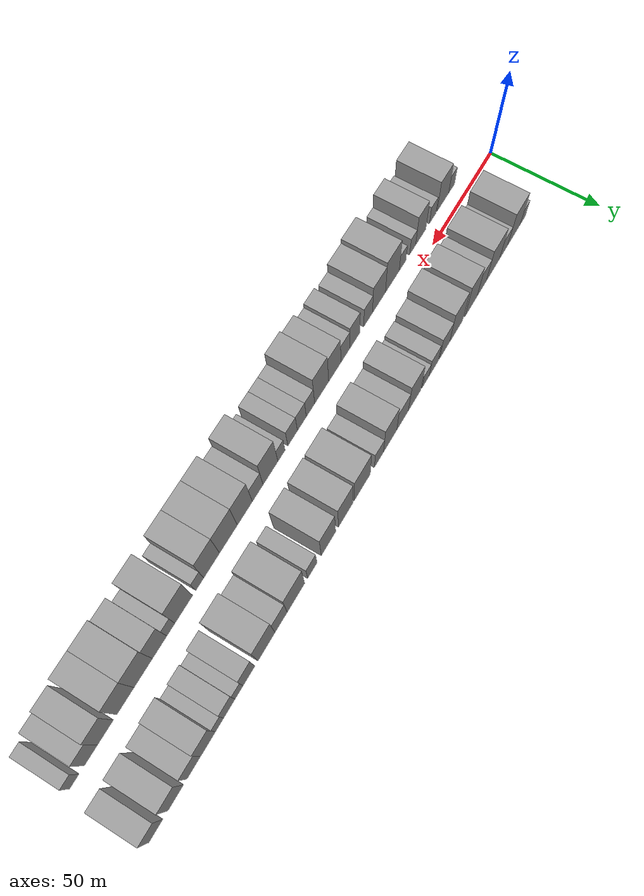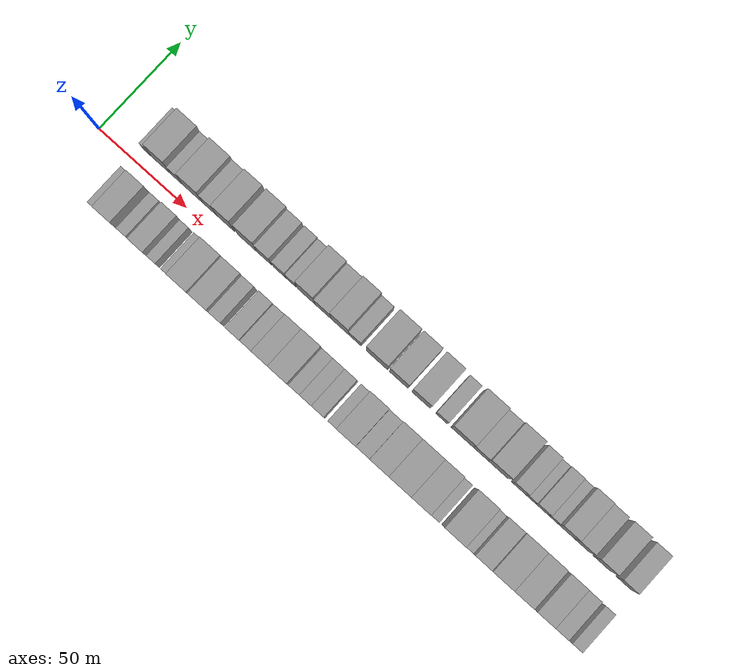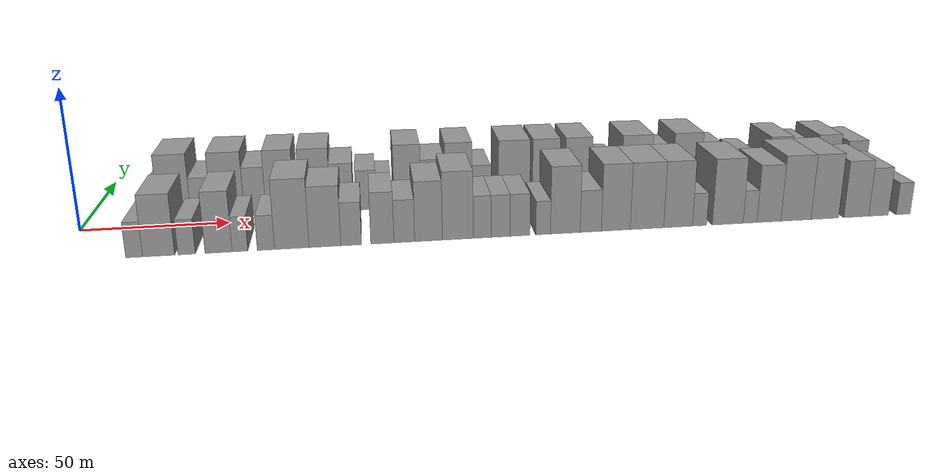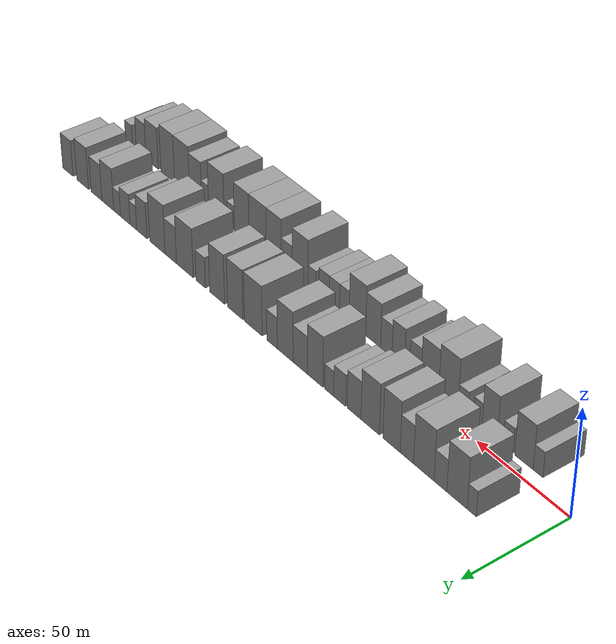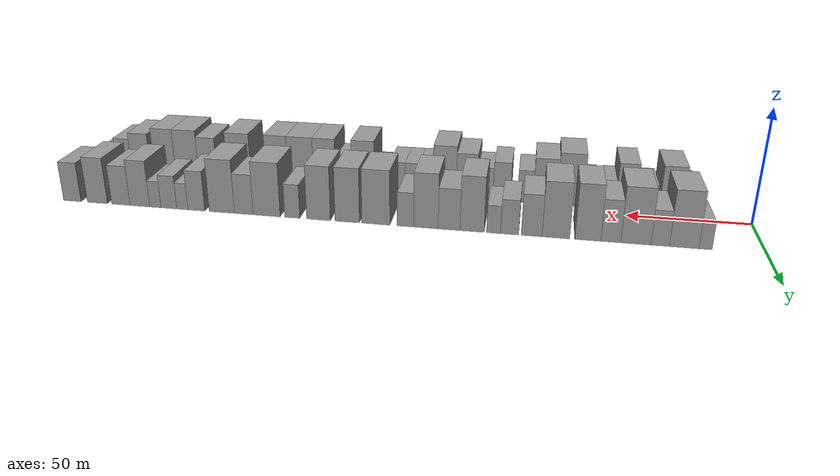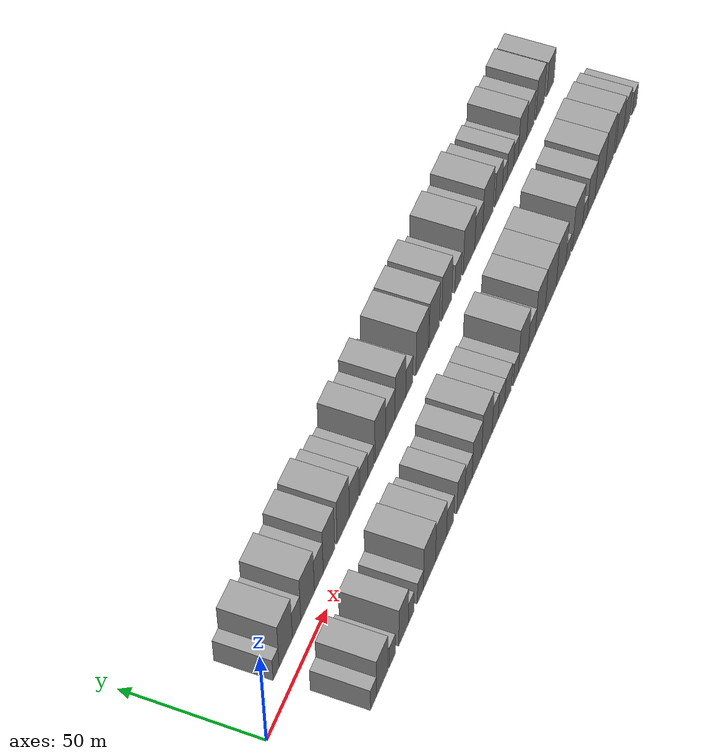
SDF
<sdf version="1.6">
 <world name="default">
  <scene>
   <sky><clouds><speed>12</speed></clouds></sky>
   <ambient>0.4 0.4 0.4 1</ambient>
   <background>0.7 0.7 0.7 1</background>
   <shadows>1</shadows>
  </scene>
  <gravity>0 0 -9.8066</gravity>
  <magnetic_field>6e-06 2.3e-05 -4.2e-05</magnetic_field>
  <physics default="0" name="default_physics" type="ode">
   <ode>
    <solver>
     <type>quick</type>
     <iters>10</iters>
     <sor>1.0</sor>
     <use_dynamic_moi_rescaling>0</use_dynamic_moi_rescaling>
    </solver>
    <constraints>
     <cfm>0</cfm>
     <erp>0.2</erp>
     <contact_max_correcting_vel>100</contact_max_correcting_vel>
     <contact_surface_layer>0.001</contact_surface_layer>
    </constraints>
   </ode>
   <max_step_size>0.004</max_step_size>
   <real_time_factor>1</real_time_factor>
   <real_time_update_rate>250</real_time_update_rate>
  </physics>
  <light name="sun" type="directional">
   <pose>0 0 10 0 0 0</pose>
   <diffuse>0.8 0.8 0.8 1</diffuse>
   <specular>0.2 0.2 0.2 1</specular>
   <attenuation>
    <range>1000</range>
    <constant>0.9</constant>
    <linear>0.01</linear>
    <quadratic>0.001</quadratic>
   </attenuation>
   <direction>-0.5 0.1 -0.9</direction>
  </light>
  <model name="building_1">
   <static>1</static>
   <pose>22.4386 16.0000 0 0.000000 0.000000 1.570796</pose>
   <link name="link">
    <pose>0 0 6.00 0 0 0</pose>
    <collision name="collision"><geometry><box><size>20.0000 4.8771 12.0000</size></box></geometry></collision>
    <visual name="visual">
     <cast_shadows>0</cast_shadows>
     <geometry><box><size>20.0000 4.8771 12.0000</size></box></geometry>
     <material>
      <script>
       <uri>model://grey_wall/materials/scripts</uri>
       <uri>model://grey_wall/materials/textures</uri>
       <name>vrc/grey_wall</name>
      </script>
     </material>
    </visual>
   </link>
  </model>
  <model name="building_2">
   <static>1</static>
   <pose>30.3815 16.0000 0 0.000000 0.000000 1.570796</pose>
   <link name="link">
    <pose>0 0 12.00 0 0 0</pose>
    <collision name="collision"><geometry><box><size>20.0000 11.0089 24.0000</size></box></geometry></collision>
    <visual name="visual">
     <cast_shadows>0</cast_shadows>
     <geometry><box><size>20.0000 11.0089 24.0000</size></box></geometry>
     <material>
      <script>
       <uri>model://grey_wall/materials/scripts</uri>
       <uri>model://grey_wall/materials/textures</uri>
       <name>vrc/grey_wall</name>
      </script>
     </material>
    </visual>
   </link>
  </model>
  <model name="building_3">
   <static>1</static>
   <pose>39.3526 16.0000 0 0.000000 0.000000 1.570796</pose>
   <link name="link">
    <pose>0 0 7.50 0 0 0</pose>
    <collision name="collision"><geometry><box><size>20.0000 6.9334 15.0000</size></box></geometry></collision>
    <visual name="visual">
     <cast_shadows>0</cast_shadows>
     <geometry><box><size>20.0000 6.9334 15.0000</size></box></geometry>
     <material>
      <script>
       <uri>model://grey_wall/materials/scripts</uri>
       <uri>model://grey_wall/materials/textures</uri>
       <name>vrc/grey_wall</name>
      </script>
     </material>
    </visual>
   </link>
  </model>
  <model name="building_4">
   <static>1</static>
   <pose>48.5223 16.0000 0 0.000000 0.000000 1.570796</pose>
   <link name="link">
    <pose>0 0 12.00 0 0 0</pose>
    <collision name="collision"><geometry><box><size>20.0000 11.4059 24.0000</size></box></geometry></collision>
    <visual name="visual">
     <cast_shadows>0</cast_shadows>
     <geometry><box><size>20.0000 11.4059 24.0000</size></box></geometry>
     <material>
      <script>
       <uri>model://grey_wall/materials/scripts</uri>
       <uri>model://grey_wall/materials/textures</uri>
       <name>vrc/grey_wall</name>
      </script>
     </material>
    </visual>
   </link>
  </model>
  <model name="building_5">
   <static>1</static>
   <pose>58.0222 16.0000 0 0.000000 0.000000 1.570796</pose>
   <link name="link">
    <pose>0 0 9.00 0 0 0</pose>
    <collision name="collision"><geometry><box><size>20.0000 7.5941 18.0000</size></box></geometry></collision>
    <visual name="visual">
     <cast_shadows>0</cast_shadows>
     <geometry><box><size>20.0000 7.5941 18.0000</size></box></geometry>
     <material>
      <script>
       <uri>model://grey_wall/materials/scripts</uri>
       <uri>model://grey_wall/materials/textures</uri>
       <name>vrc/grey_wall</name>
      </script>
     </material>
    </visual>
   </link>
  </model>
  <model name="building_6">
   <static>1</static>
   <pose>66.7886 16.0000 0 0.000000 0.000000 1.570796</pose>
   <link name="link">
    <pose>0 0 12.00 0 0 0</pose>
    <collision name="collision"><geometry><box><size>20.0000 9.9386 24.0000</size></box></geometry></collision>
    <visual name="visual">
     <cast_shadows>0</cast_shadows>
     <geometry><box><size>20.0000 9.9386 24.0000</size></box></geometry>
     <material>
      <script>
       <uri>model://grey_wall/materials/scripts</uri>
       <uri>model://grey_wall/materials/textures</uri>
       <name>vrc/grey_wall</name>
      </script>
     </material>
    </visual>
   </link>
  </model>
  <model name="building_7">
   <static>1</static>
   <pose>79.1548 16.0000 0 0.000000 0.000000 1.570796</pose>
   <link name="link">
    <pose>0 0 12.00 0 0 0</pose>
    <collision name="collision"><geometry><box><size>20.0000 10.7938 24.0000</size></box></geometry></collision>
    <visual name="visual">
     <cast_shadows>0</cast_shadows>
     <geometry><box><size>20.0000 10.7938 24.0000</size></box></geometry>
     <material>
      <script>
       <uri>model://grey_wall/materials/scripts</uri>
       <uri>model://grey_wall/materials/textures</uri>
       <name>vrc/grey_wall</name>
      </script>
     </material>
    </visual>
   </link>
  </model>
  <model name="building_8">
   <static>1</static>
   <pose>88.6524 16.0000 0 0.000000 0.000000 1.570796</pose>
   <link name="link">
    <pose>0 0 9.00 0 0 0</pose>
    <collision name="collision"><geometry><box><size>20.0000 8.2014 18.0000</size></box></geometry></collision>
    <visual name="visual">
     <cast_shadows>0</cast_shadows>
     <geometry><box><size>20.0000 8.2014 18.0000</size></box></geometry>
     <material>
      <script>
       <uri>model://grey_wall/materials/scripts</uri>
       <uri>model://grey_wall/materials/textures</uri>
       <name>vrc/grey_wall</name>
      </script>
     </material>
    </visual>
   </link>
  </model>
  <model name="building_9">
   <static>1</static>
   <pose>97.3498 16.0000 0 0.000000 0.000000 1.570796</pose>
   <link name="link">
    <pose>0 0 7.50 0 0 0</pose>
    <collision name="collision"><geometry><box><size>20.0000 7.1934 15.0000</size></box></geometry></collision>
    <visual name="visual">
     <cast_shadows>0</cast_shadows>
     <geometry><box><size>20.0000 7.1934 15.0000</size></box></geometry>
     <material>
      <script>
       <uri>model://grey_wall/materials/scripts</uri>
       <uri>model://grey_wall/materials/textures</uri>
       <name>vrc/grey_wall</name>
      </script>
     </material>
    </visual>
   </link>
  </model>
  <model name="building_10">
   <static>1</static>
   <pose>103.7270 16.0000 0 0.000000 0.000000 1.570796</pose>
   <link name="link">
    <pose>0 0 6.00 0 0 0</pose>
    <collision name="collision"><geometry><box><size>20.0000 5.5611 12.0000</size></box></geometry></collision>
    <visual name="visual">
     <cast_shadows>0</cast_shadows>
     <geometry><box><size>20.0000 5.5611 12.0000</size></box></geometry>
     <material>
      <script>
       <uri>model://grey_wall/materials/scripts</uri>
       <uri>model://grey_wall/materials/textures</uri>
       <name>vrc/grey_wall</name>
      </script>
     </material>
    </visual>
   </link>
  </model>
  <model name="building_11">
   <static>1</static>
   <pose>112.3745 16.0000 0 0.000000 0.000000 1.570796</pose>
   <link name="link">
    <pose>0 0 12.00 0 0 0</pose>
    <collision name="collision"><geometry><box><size>20.0000 9.7338 24.0000</size></box></geometry></collision>
    <visual name="visual">
     <cast_shadows>0</cast_shadows>
     <geometry><box><size>20.0000 9.7338 24.0000</size></box></geometry>
     <material>
      <script>
       <uri>model://grey_wall/materials/scripts</uri>
       <uri>model://grey_wall/materials/textures</uri>
       <name>vrc/grey_wall</name>
      </script>
     </material>
    </visual>
   </link>
  </model>
  <model name="building_12">
   <static>1</static>
   <pose>121.6803 16.0000 0 0.000000 0.000000 1.570796</pose>
   <link name="link">
    <pose>0 0 9.00 0 0 0</pose>
    <collision name="collision"><geometry><box><size>20.0000 8.8777 18.0000</size></box></geometry></collision>
    <visual name="visual">
     <cast_shadows>0</cast_shadows>
     <geometry><box><size>20.0000 8.8777 18.0000</size></box></geometry>
     <material>
      <script>
       <uri>model://grey_wall/materials/scripts</uri>
       <uri>model://grey_wall/materials/textures</uri>
       <name>vrc/grey_wall</name>
      </script>
     </material>
    </visual>
   </link>
  </model>
  <model name="building_13">
   <static>1</static>
   <pose>131.1339 16.0000 0 0.000000 0.000000 1.570796</pose>
   <link name="link">
    <pose>0 0 12.00 0 0 0</pose>
    <collision name="collision"><geometry><box><size>20.0000 10.0296 24.0000</size></box></geometry></collision>
    <visual name="visual">
     <cast_shadows>0</cast_shadows>
     <geometry><box><size>20.0000 10.0296 24.0000</size></box></geometry>
     <material>
      <script>
       <uri>model://grey_wall/materials/scripts</uri>
       <uri>model://grey_wall/materials/textures</uri>
       <name>vrc/grey_wall</name>
      </script>
     </material>
    </visual>
   </link>
  </model>
  <model name="building_14">
   <static>1</static>
   <pose>139.5360 16.0000 0 0.000000 0.000000 1.570796</pose>
   <link name="link">
    <pose>0 0 7.50 0 0 0</pose>
    <collision name="collision"><geometry><box><size>20.0000 6.7747 15.0000</size></box></geometry></collision>
    <visual name="visual">
     <cast_shadows>0</cast_shadows>
     <geometry><box><size>20.0000 6.7747 15.0000</size></box></geometry>
     <material>
      <script>
       <uri>model://grey_wall/materials/scripts</uri>
       <uri>model://grey_wall/materials/textures</uri>
       <name>vrc/grey_wall</name>
      </script>
     </material>
    </visual>
   </link>
  </model>
  <model name="building_15">
   <static>1</static>
   <pose>151.7849 16.0000 0 0.000000 0.000000 1.570796</pose>
   <link name="link">
    <pose>0 0 12.00 0 0 0</pose>
    <collision name="collision"><geometry><box><size>20.0000 11.7231 24.0000</size></box></geometry></collision>
    <visual name="visual">
     <cast_shadows>0</cast_shadows>
     <geometry><box><size>20.0000 11.7231 24.0000</size></box></geometry>
     <material>
      <script>
       <uri>model://grey_wall/materials/scripts</uri>
       <uri>model://grey_wall/materials/textures</uri>
       <name>vrc/grey_wall</name>
      </script>
     </material>
    </visual>
   </link>
  </model>
  <model name="building_16">
   <static>1</static>
   <pose>163.8093 16.0000 0 0.000000 0.000000 1.570796</pose>
   <link name="link">
    <pose>0 0 12.00 0 0 0</pose>
    <collision name="collision"><geometry><box><size>20.0000 10.3256 24.0000</size></box></geometry></collision>
    <visual name="visual">
     <cast_shadows>0</cast_shadows>
     <geometry><box><size>20.0000 10.3256 24.0000</size></box></geometry>
     <material>
      <script>
       <uri>model://grey_wall/materials/scripts</uri>
       <uri>model://grey_wall/materials/textures</uri>
       <name>vrc/grey_wall</name>
      </script>
     </material>
    </visual>
   </link>
  </model>
  <model name="building_17">
   <static>1</static>
   <pose>176.0331 16.0000 0 0.000000 0.000000 1.570796</pose>
   <link name="link">
    <pose>0 0 12.00 0 0 0</pose>
    <collision name="collision"><geometry><box><size>20.0000 10.1220 24.0000</size></box></geometry></collision>
    <visual name="visual">
     <cast_shadows>0</cast_shadows>
     <geometry><box><size>20.0000 10.1220 24.0000</size></box></geometry>
     <material>
      <script>
       <uri>model://grey_wall/materials/scripts</uri>
       <uri>model://grey_wall/materials/textures</uri>
       <name>vrc/grey_wall</name>
      </script>
     </material>
    </visual>
   </link>
  </model>
  <model name="building_18">
   <static>1</static>
   <pose>187.3365 16.0000 0 0.000000 0.000000 1.570796</pose>
   <link name="link">
    <pose>0 0 7.50 0 0 0</pose>
    <collision name="collision"><geometry><box><size>20.0000 6.4848 15.0000</size></box></geometry></collision>
    <visual name="visual">
     <cast_shadows>0</cast_shadows>
     <geometry><box><size>20.0000 6.4848 15.0000</size></box></geometry>
     <material>
      <script>
       <uri>model://grey_wall/materials/scripts</uri>
       <uri>model://grey_wall/materials/textures</uri>
       <name>vrc/grey_wall</name>
      </script>
     </material>
    </visual>
   </link>
  </model>
  <model name="building_19">
   <static>1</static>
   <pose>198.4865 16.0000 0 0.000000 0.000000 1.570796</pose>
   <link name="link">
    <pose>0 0 12.00 0 0 0</pose>
    <collision name="collision"><geometry><box><size>20.0000 11.8150 24.0000</size></box></geometry></collision>
    <visual name="visual">
     <cast_shadows>0</cast_shadows>
     <geometry><box><size>20.0000 11.8150 24.0000</size></box></geometry>
     <material>
      <script>
       <uri>model://grey_wall/materials/scripts</uri>
       <uri>model://grey_wall/materials/textures</uri>
       <name>vrc/grey_wall</name>
      </script>
     </material>
    </visual>
   </link>
  </model>
  <model name="building_20">
   <static>1</static>
   <pose>208.4849 16.0000 0 0.000000 0.000000 1.570796</pose>
   <link name="link">
    <pose>0 0 9.00 0 0 0</pose>
    <collision name="collision"><geometry><box><size>20.0000 8.1819 18.0000</size></box></geometry></collision>
    <visual name="visual">
     <cast_shadows>0</cast_shadows>
     <geometry><box><size>20.0000 8.1819 18.0000</size></box></geometry>
     <material>
      <script>
       <uri>model://grey_wall/materials/scripts</uri>
       <uri>model://grey_wall/materials/textures</uri>
       <name>vrc/grey_wall</name>
      </script>
     </material>
    </visual>
   </link>
  </model>
  <model name="building_21">
   <static>1</static>
   <pose>218.1784 16.0000 0 0.000000 0.000000 1.570796</pose>
   <link name="link">
    <pose>0 0 12.00 0 0 0</pose>
    <collision name="collision"><geometry><box><size>20.0000 11.2052 24.0000</size></box></geometry></collision>
    <visual name="visual">
     <cast_shadows>0</cast_shadows>
     <geometry><box><size>20.0000 11.2052 24.0000</size></box></geometry>
     <material>
      <script>
       <uri>model://grey_wall/materials/scripts</uri>
       <uri>model://grey_wall/materials/textures</uri>
       <name>vrc/grey_wall</name>
      </script>
     </material>
    </visual>
   </link>
  </model>
  <model name="building_22">
   <static>1</static>
   <pose>229.5810 16.0000 0 0.000000 0.000000 1.570796</pose>
   <link name="link">
    <pose>0 0 9.00 0 0 0</pose>
    <collision name="collision"><geometry><box><size>20.0000 7.5998 18.0000</size></box></geometry></collision>
    <visual name="visual">
     <cast_shadows>0</cast_shadows>
     <geometry><box><size>20.0000 7.5998 18.0000</size></box></geometry>
     <material>
      <script>
       <uri>model://grey_wall/materials/scripts</uri>
       <uri>model://grey_wall/materials/textures</uri>
       <name>vrc/grey_wall</name>
      </script>
     </material>
    </visual>
   </link>
  </model>
  <model name="building_23">
   <static>1</static>
   <pose>235.9039 16.0000 0 0.000000 0.000000 1.570796</pose>
   <link name="link">
    <pose>0 0 6.00 0 0 0</pose>
    <collision name="collision"><geometry><box><size>20.0000 5.0461 12.0000</size></box></geometry></collision>
    <visual name="visual">
     <cast_shadows>0</cast_shadows>
     <geometry><box><size>20.0000 5.0461 12.0000</size></box></geometry>
     <material>
      <script>
       <uri>model://grey_wall/materials/scripts</uri>
       <uri>model://grey_wall/materials/textures</uri>
       <name>vrc/grey_wall</name>
      </script>
     </material>
    </visual>
   </link>
  </model>
  <model name="building_24">
   <static>1</static>
   <pose>242.0188 16.0000 0 0.000000 0.000000 1.570796</pose>
   <link name="link">
    <pose>0 0 7.50 0 0 0</pose>
    <collision name="collision"><geometry><box><size>20.0000 7.1837 15.0000</size></box></geometry></collision>
    <visual name="visual">
     <cast_shadows>0</cast_shadows>
     <geometry><box><size>20.0000 7.1837 15.0000</size></box></geometry>
     <material>
      <script>
       <uri>model://grey_wall/materials/scripts</uri>
       <uri>model://grey_wall/materials/textures</uri>
       <name>vrc/grey_wall</name>
      </script>
     </material>
    </visual>
   </link>
  </model>
  <model name="building_25">
   <static>1</static>
   <pose>248.1818 16.0000 0 0.000000 0.000000 1.570796</pose>
   <link name="link">
    <pose>0 0 6.00 0 0 0</pose>
    <collision name="collision"><geometry><box><size>20.0000 5.1423 12.0000</size></box></geometry></collision>
    <visual name="visual">
     <cast_shadows>0</cast_shadows>
     <geometry><box><size>20.0000 5.1423 12.0000</size></box></geometry>
     <material>
      <script>
       <uri>model://grey_wall/materials/scripts</uri>
       <uri>model://grey_wall/materials/textures</uri>
       <name>vrc/grey_wall</name>
      </script>
     </material>
    </visual>
   </link>
  </model>
  <model name="building_26">
   <static>1</static>
   <pose>255.2734 16.0000 0 0.000000 0.000000 1.570796</pose>
   <link name="link">
    <pose>0 0 10.50 0 0 0</pose>
    <collision name="collision"><geometry><box><size>20.0000 9.0409 21.0000</size></box></geometry></collision>
    <visual name="visual">
     <cast_shadows>0</cast_shadows>
     <geometry><box><size>20.0000 9.0409 21.0000</size></box></geometry>
     <material>
      <script>
       <uri>model://grey_wall/materials/scripts</uri>
       <uri>model://grey_wall/materials/textures</uri>
       <name>vrc/grey_wall</name>
      </script>
     </material>
    </visual>
   </link>
  </model>
  <model name="building_27">
   <static>1</static>
   <pose>264.0254 16.0000 0 0.000000 0.000000 1.570796</pose>
   <link name="link">
    <pose>0 0 9.00 0 0 0</pose>
    <collision name="collision"><geometry><box><size>20.0000 8.4632 18.0000</size></box></geometry></collision>
    <visual name="visual">
     <cast_shadows>0</cast_shadows>
     <geometry><box><size>20.0000 8.4632 18.0000</size></box></geometry>
     <material>
      <script>
       <uri>model://grey_wall/materials/scripts</uri>
       <uri>model://grey_wall/materials/textures</uri>
       <name>vrc/grey_wall</name>
      </script>
     </material>
    </visual>
   </link>
  </model>
  <model name="building_28">
   <static>1</static>
   <pose>274.9208 16.0000 0 0.000000 0.000000 1.570796</pose>
   <link name="link">
    <pose>0 0 10.50 0 0 0</pose>
    <collision name="collision"><geometry><box><size>20.0000 9.3276 21.0000</size></box></geometry></collision>
    <visual name="visual">
     <cast_shadows>0</cast_shadows>
     <geometry><box><size>20.0000 9.3276 21.0000</size></box></geometry>
     <material>
      <script>
       <uri>model://grey_wall/materials/scripts</uri>
       <uri>model://grey_wall/materials/textures</uri>
       <name>vrc/grey_wall</name>
      </script>
     </material>
    </visual>
   </link>
  </model>
  <model name="building_29">
   <static>1</static>
   <pose>286.6977 16.0000 0 0.000000 0.000000 1.570796</pose>
   <link name="link">
    <pose>0 0 9.00 0 0 0</pose>
    <collision name="collision"><geometry><box><size>20.0000 8.2263 18.0000</size></box></geometry></collision>
    <visual name="visual">
     <cast_shadows>0</cast_shadows>
     <geometry><box><size>20.0000 8.2263 18.0000</size></box></geometry>
     <material>
      <script>
       <uri>model://grey_wall/materials/scripts</uri>
       <uri>model://grey_wall/materials/textures</uri>
       <name>vrc/grey_wall</name>
      </script>
     </material>
    </visual>
   </link>
  </model>
  <model name="building_30">
   <static>1</static>
   <pose>23.5822 -16.0000 0 0.000000 0.000000 1.570796</pose>
   <link name="link">
    <pose>0 0 6.00 0 0 0</pose>
    <collision name="collision"><geometry><box><size>20.0000 5.1645 12.0000</size></box></geometry></collision>
    <visual name="visual">
     <cast_shadows>0</cast_shadows>
     <geometry><box><size>20.0000 5.1645 12.0000</size></box></geometry>
     <material>
      <script>
       <uri>model://grey_wall/materials/scripts</uri>
       <uri>model://grey_wall/materials/textures</uri>
       <name>vrc/grey_wall</name>
      </script>
     </material>
    </visual>
   </link>
  </model>
  <model name="building_31">
   <static>1</static>
   <pose>31.1117 -16.0000 0 0.000000 0.000000 1.570796</pose>
   <link name="link">
    <pose>0 0 10.50 0 0 0</pose>
    <collision name="collision"><geometry><box><size>20.0000 9.8944 21.0000</size></box></geometry></collision>
    <visual name="visual">
     <cast_shadows>0</cast_shadows>
     <geometry><box><size>20.0000 9.8944 21.0000</size></box></geometry>
     <material>
      <script>
       <uri>model://grey_wall/materials/scripts</uri>
       <uri>model://grey_wall/materials/textures</uri>
       <name>vrc/grey_wall</name>
      </script>
     </material>
    </visual>
   </link>
  </model>
  <model name="building_32">
   <static>1</static>
   <pose>39.7659 -16.0000 0 0.000000 0.000000 1.570796</pose>
   <link name="link">
    <pose>0 0 6.00 0 0 0</pose>
    <collision name="collision"><geometry><box><size>20.0000 5.4142 12.0000</size></box></geometry></collision>
    <visual name="visual">
     <cast_shadows>0</cast_shadows>
     <geometry><box><size>20.0000 5.4142 12.0000</size></box></geometry>
     <material>
      <script>
       <uri>model://grey_wall/materials/scripts</uri>
       <uri>model://grey_wall/materials/textures</uri>
       <name>vrc/grey_wall</name>
      </script>
     </material>
    </visual>
   </link>
  </model>
  <model name="building_33">
   <static>1</static>
   <pose>49.7314 -16.0000 0 0.000000 0.000000 1.570796</pose>
   <link name="link">
    <pose>0 0 10.50 0 0 0</pose>
    <collision name="collision"><geometry><box><size>20.0000 8.5168 21.0000</size></box></geometry></collision>
    <visual name="visual">
     <cast_shadows>0</cast_shadows>
     <geometry><box><size>20.0000 8.5168 21.0000</size></box></geometry>
     <material>
      <script>
       <uri>model://grey_wall/materials/scripts</uri>
       <uri>model://grey_wall/materials/textures</uri>
       <name>vrc/grey_wall</name>
      </script>
     </material>
    </visual>
   </link>
  </model>
  <model name="building_34">
   <static>1</static>
   <pose>56.4510 -16.0000 0 0.000000 0.000000 1.570796</pose>
   <link name="link">
    <pose>0 0 6.00 0 0 0</pose>
    <collision name="collision"><geometry><box><size>20.0000 4.9223 12.0000</size></box></geometry></collision>
    <visual name="visual">
     <cast_shadows>0</cast_shadows>
     <geometry><box><size>20.0000 4.9223 12.0000</size></box></geometry>
     <material>
      <script>
       <uri>model://grey_wall/materials/scripts</uri>
       <uri>model://grey_wall/materials/textures</uri>
       <name>vrc/grey_wall</name>
      </script>
     </material>
    </visual>
   </link>
  </model>
  <model name="building_35">
   <static>1</static>
   <pose>64.6453 -16.0000 0 0.000000 0.000000 1.570796</pose>
   <link name="link">
    <pose>0 0 6.00 0 0 0</pose>
    <collision name="collision"><geometry><box><size>20.0000 5.4663 12.0000</size></box></geometry></collision>
    <visual name="visual">
     <cast_shadows>0</cast_shadows>
     <geometry><box><size>20.0000 5.4663 12.0000</size></box></geometry>
     <material>
      <script>
       <uri>model://grey_wall/materials/scripts</uri>
       <uri>model://grey_wall/materials/textures</uri>
       <name>vrc/grey_wall</name>
      </script>
     </material>
    </visual>
   </link>
  </model>
  <model name="building_36">
   <static>1</static>
   <pose>72.9111 -16.0000 0 0.000000 0.000000 1.570796</pose>
   <link name="link">
    <pose>0 0 12.00 0 0 0</pose>
    <collision name="collision"><geometry><box><size>20.0000 11.0652 24.0000</size></box></geometry></collision>
    <visual name="visual">
     <cast_shadows>0</cast_shadows>
     <geometry><box><size>20.0000 11.0652 24.0000</size></box></geometry>
     <material>
      <script>
       <uri>model://grey_wall/materials/scripts</uri>
       <uri>model://grey_wall/materials/textures</uri>
       <name>vrc/grey_wall</name>
      </script>
     </material>
    </visual>
   </link>
  </model>
  <model name="building_37">
   <static>1</static>
   <pose>83.5816 -16.0000 0 0.000000 0.000000 1.570796</pose>
   <link name="link">
    <pose>0 0 10.50 0 0 0</pose>
    <collision name="collision"><geometry><box><size>20.0000 10.2758 21.0000</size></box></geometry></collision>
    <visual name="visual">
     <cast_shadows>0</cast_shadows>
     <geometry><box><size>20.0000 10.2758 21.0000</size></box></geometry>
     <material>
      <script>
       <uri>model://grey_wall/materials/scripts</uri>
       <uri>model://grey_wall/materials/textures</uri>
       <name>vrc/grey_wall</name>
      </script>
     </material>
    </visual>
   </link>
  </model>
  <model name="building_38">
   <static>1</static>
   <pose>92.1064 -16.0000 0 0.000000 0.000000 1.570796</pose>
   <link name="link">
    <pose>0 0 7.50 0 0 0</pose>
    <collision name="collision"><geometry><box><size>20.0000 6.7737 15.0000</size></box></geometry></collision>
    <visual name="visual">
     <cast_shadows>0</cast_shadows>
     <geometry><box><size>20.0000 6.7737 15.0000</size></box></geometry>
     <material>
      <script>
       <uri>model://grey_wall/materials/scripts</uri>
       <uri>model://grey_wall/materials/textures</uri>
       <name>vrc/grey_wall</name>
      </script>
     </material>
    </visual>
   </link>
  </model>
  <model name="building_39">
   <static>1</static>
   <pose>102.2921 -16.0000 0 0.000000 0.000000 1.570796</pose>
   <link name="link">
    <pose>0 0 9.00 0 0 0</pose>
    <collision name="collision"><geometry><box><size>20.0000 7.5977 18.0000</size></box></geometry></collision>
    <visual name="visual">
     <cast_shadows>0</cast_shadows>
     <geometry><box><size>20.0000 7.5977 18.0000</size></box></geometry>
     <material>
      <script>
       <uri>model://grey_wall/materials/scripts</uri>
       <uri>model://grey_wall/materials/textures</uri>
       <name>vrc/grey_wall</name>
      </script>
     </material>
    </visual>
   </link>
  </model>
  <model name="building_40">
   <static>1</static>
   <pose>109.5265 -16.0000 0 0.000000 0.000000 1.570796</pose>
   <link name="link">
    <pose>0 0 7.50 0 0 0</pose>
    <collision name="collision"><geometry><box><size>20.0000 6.8711 15.0000</size></box></geometry></collision>
    <visual name="visual">
     <cast_shadows>0</cast_shadows>
     <geometry><box><size>20.0000 6.8711 15.0000</size></box></geometry>
     <material>
      <script>
       <uri>model://grey_wall/materials/scripts</uri>
       <uri>model://grey_wall/materials/textures</uri>
       <name>vrc/grey_wall</name>
      </script>
     </material>
    </visual>
   </link>
  </model>
  <model name="building_41">
   <static>1</static>
   <pose>117.5592 -16.0000 0 0.000000 0.000000 1.570796</pose>
   <link name="link">
    <pose>0 0 10.50 0 0 0</pose>
    <collision name="collision"><geometry><box><size>20.0000 9.1943 21.0000</size></box></geometry></collision>
    <visual name="visual">
     <cast_shadows>0</cast_shadows>
     <geometry><box><size>20.0000 9.1943 21.0000</size></box></geometry>
     <material>
      <script>
       <uri>model://grey_wall/materials/scripts</uri>
       <uri>model://grey_wall/materials/textures</uri>
       <name>vrc/grey_wall</name>
      </script>
     </material>
    </visual>
   </link>
  </model>
  <model name="building_42">
   <static>1</static>
   <pose>127.3364 -16.0000 0 0.000000 0.000000 1.570796</pose>
   <link name="link">
    <pose>0 0 12.00 0 0 0</pose>
    <collision name="collision"><geometry><box><size>20.0000 10.3600 24.0000</size></box></geometry></collision>
    <visual name="visual">
     <cast_shadows>0</cast_shadows>
     <geometry><box><size>20.0000 10.3600 24.0000</size></box></geometry>
     <material>
      <script>
       <uri>model://grey_wall/materials/scripts</uri>
       <uri>model://grey_wall/materials/textures</uri>
       <name>vrc/grey_wall</name>
      </script>
     </material>
    </visual>
   </link>
  </model>
  <model name="building_43">
   <static>1</static>
   <pose>135.5775 -16.0000 0 0.000000 0.000000 1.570796</pose>
   <link name="link">
    <pose>0 0 7.50 0 0 0</pose>
    <collision name="collision"><geometry><box><size>20.0000 6.1223 15.0000</size></box></geometry></collision>
    <visual name="visual">
     <cast_shadows>0</cast_shadows>
     <geometry><box><size>20.0000 6.1223 15.0000</size></box></geometry>
     <material>
      <script>
       <uri>model://grey_wall/materials/scripts</uri>
       <uri>model://grey_wall/materials/textures</uri>
       <name>vrc/grey_wall</name>
      </script>
     </material>
    </visual>
   </link>
  </model>
  <model name="building_44">
   <static>1</static>
   <pose>141.8588 -16.0000 0 0.000000 0.000000 1.570796</pose>
   <link name="link">
    <pose>0 0 7.50 0 0 0</pose>
    <collision name="collision"><geometry><box><size>20.0000 6.4402 15.0000</size></box></geometry></collision>
    <visual name="visual">
     <cast_shadows>0</cast_shadows>
     <geometry><box><size>20.0000 6.4402 15.0000</size></box></geometry>
     <material>
      <script>
       <uri>model://grey_wall/materials/scripts</uri>
       <uri>model://grey_wall/materials/textures</uri>
       <name>vrc/grey_wall</name>
      </script>
     </material>
    </visual>
   </link>
  </model>
  <model name="building_45">
   <static>1</static>
   <pose>148.4781 -16.0000 0 0.000000 0.000000 1.570796</pose>
   <link name="link">
    <pose>0 0 7.50 0 0 0</pose>
    <collision name="collision"><geometry><box><size>20.0000 6.7985 15.0000</size></box></geometry></collision>
    <visual name="visual">
     <cast_shadows>0</cast_shadows>
     <geometry><box><size>20.0000 6.7985 15.0000</size></box></geometry>
     <material>
      <script>
       <uri>model://grey_wall/materials/scripts</uri>
       <uri>model://grey_wall/materials/textures</uri>
       <name>vrc/grey_wall</name>
      </script>
     </material>
    </visual>
   </link>
  </model>
  <model name="building_46">
   <static>1</static>
   <pose>156.3939 -16.0000 0 0.000000 0.000000 1.570796</pose>
   <link name="link">
    <pose>0 0 6.00 0 0 0</pose>
    <collision name="collision"><geometry><box><size>20.0000 5.0331 12.0000</size></box></geometry></collision>
    <visual name="visual">
     <cast_shadows>0</cast_shadows>
     <geometry><box><size>20.0000 5.0331 12.0000</size></box></geometry>
     <material>
      <script>
       <uri>model://grey_wall/materials/scripts</uri>
       <uri>model://grey_wall/materials/textures</uri>
       <name>vrc/grey_wall</name>
      </script>
     </material>
    </visual>
   </link>
  </model>
  <model name="building_47">
   <static>1</static>
   <pose>164.0738 -16.0000 0 0.000000 0.000000 1.570796</pose>
   <link name="link">
    <pose>0 0 12.00 0 0 0</pose>
    <collision name="collision"><geometry><box><size>20.0000 10.3267 24.0000</size></box></geometry></collision>
    <visual name="visual">
     <cast_shadows>0</cast_shadows>
     <geometry><box><size>20.0000 10.3267 24.0000</size></box></geometry>
     <material>
      <script>
       <uri>model://grey_wall/materials/scripts</uri>
       <uri>model://grey_wall/materials/textures</uri>
       <name>vrc/grey_wall</name>
      </script>
     </material>
    </visual>
   </link>
  </model>
  <model name="building_48">
   <static>1</static>
   <pose>172.9476 -16.0000 0 0.000000 0.000000 1.570796</pose>
   <link name="link">
    <pose>0 0 7.50 0 0 0</pose>
    <collision name="collision"><geometry><box><size>20.0000 7.4207 15.0000</size></box></geometry></collision>
    <visual name="visual">
     <cast_shadows>0</cast_shadows>
     <geometry><box><size>20.0000 7.4207 15.0000</size></box></geometry>
     <material>
      <script>
       <uri>model://grey_wall/materials/scripts</uri>
       <uri>model://grey_wall/materials/textures</uri>
       <name>vrc/grey_wall</name>
      </script>
     </material>
    </visual>
   </link>
  </model>
  <model name="building_49">
   <static>1</static>
   <pose>181.7436 -16.0000 0 0.000000 0.000000 1.570796</pose>
   <link name="link">
    <pose>0 0 12.00 0 0 0</pose>
    <collision name="collision"><geometry><box><size>20.0000 10.1713 24.0000</size></box></geometry></collision>
    <visual name="visual">
     <cast_shadows>0</cast_shadows>
     <geometry><box><size>20.0000 10.1713 24.0000</size></box></geometry>
     <material>
      <script>
       <uri>model://grey_wall/materials/scripts</uri>
       <uri>model://grey_wall/materials/textures</uri>
       <name>vrc/grey_wall</name>
      </script>
     </material>
    </visual>
   </link>
  </model>
  <model name="building_50">
   <static>1</static>
   <pose>192.7935 -16.0000 0 0.000000 0.000000 1.570796</pose>
   <link name="link">
    <pose>0 0 12.00 0 0 0</pose>
    <collision name="collision"><geometry><box><size>20.0000 11.9285 24.0000</size></box></geometry></collision>
    <visual name="visual">
     <cast_shadows>0</cast_shadows>
     <geometry><box><size>20.0000 11.9285 24.0000</size></box></geometry>
     <material>
      <script>
       <uri>model://grey_wall/materials/scripts</uri>
       <uri>model://grey_wall/materials/textures</uri>
       <name>vrc/grey_wall</name>
      </script>
     </material>
    </visual>
   </link>
  </model>
  <model name="building_51">
   <static>1</static>
   <pose>203.9417 -16.0000 0 0.000000 0.000000 1.570796</pose>
   <link name="link">
    <pose>0 0 12.00 0 0 0</pose>
    <collision name="collision"><geometry><box><size>20.0000 10.3678 24.0000</size></box></geometry></collision>
    <visual name="visual">
     <cast_shadows>0</cast_shadows>
     <geometry><box><size>20.0000 10.3678 24.0000</size></box></geometry>
     <material>
      <script>
       <uri>model://grey_wall/materials/scripts</uri>
       <uri>model://grey_wall/materials/textures</uri>
       <name>vrc/grey_wall</name>
      </script>
     </material>
    </visual>
   </link>
  </model>
  <model name="building_52">
   <static>1</static>
   <pose>211.7009 -16.0000 0 0.000000 0.000000 1.570796</pose>
   <link name="link">
    <pose>0 0 6.00 0 0 0</pose>
    <collision name="collision"><geometry><box><size>20.0000 5.1506 12.0000</size></box></geometry></collision>
    <visual name="visual">
     <cast_shadows>0</cast_shadows>
     <geometry><box><size>20.0000 5.1506 12.0000</size></box></geometry>
     <material>
      <script>
       <uri>model://grey_wall/materials/scripts</uri>
       <uri>model://grey_wall/materials/textures</uri>
       <name>vrc/grey_wall</name>
      </script>
     </material>
    </visual>
   </link>
  </model>
  <model name="building_53">
   <static>1</static>
   <pose>221.9245 -16.0000 0 0.000000 0.000000 1.570796</pose>
   <link name="link">
    <pose>0 0 12.00 0 0 0</pose>
    <collision name="collision"><geometry><box><size>20.0000 11.2965 24.0000</size></box></geometry></collision>
    <visual name="visual">
     <cast_shadows>0</cast_shadows>
     <geometry><box><size>20.0000 11.2965 24.0000</size></box></geometry>
     <material>
      <script>
       <uri>model://grey_wall/materials/scripts</uri>
       <uri>model://grey_wall/materials/textures</uri>
       <name>vrc/grey_wall</name>
      </script>
     </material>
    </visual>
   </link>
  </model>
  <model name="building_54">
   <static>1</static>
   <pose>230.1069 -16.0000 0 0.000000 0.000000 1.570796</pose>
   <link name="link">
    <pose>0 0 6.00 0 0 0</pose>
    <collision name="collision"><geometry><box><size>20.0000 5.0684 12.0000</size></box></geometry></collision>
    <visual name="visual">
     <cast_shadows>0</cast_shadows>
     <geometry><box><size>20.0000 5.0684 12.0000</size></box></geometry>
     <material>
      <script>
       <uri>model://grey_wall/materials/scripts</uri>
       <uri>model://grey_wall/materials/textures</uri>
       <name>vrc/grey_wall</name>
      </script>
     </material>
    </visual>
   </link>
  </model>
  <model name="building_55">
   <static>1</static>
   <pose>237.0817 -16.0000 0 0.000000 0.000000 1.570796</pose>
   <link name="link">
    <pose>0 0 10.50 0 0 0</pose>
    <collision name="collision"><geometry><box><size>20.0000 8.8810 21.0000</size></box></geometry></collision>
    <visual name="visual">
     <cast_shadows>0</cast_shadows>
     <geometry><box><size>20.0000 8.8810 21.0000</size></box></geometry>
     <material>
      <script>
       <uri>model://grey_wall/materials/scripts</uri>
       <uri>model://grey_wall/materials/textures</uri>
       <name>vrc/grey_wall</name>
      </script>
     </material>
    </visual>
   </link>
  </model>
  <model name="building_56">
   <static>1</static>
   <pose>247.1463 -16.0000 0 0.000000 0.000000 1.570796</pose>
   <link name="link">
    <pose>0 0 12.00 0 0 0</pose>
    <collision name="collision"><geometry><box><size>20.0000 11.2482 24.0000</size></box></geometry></collision>
    <visual name="visual">
     <cast_shadows>0</cast_shadows>
     <geometry><box><size>20.0000 11.2482 24.0000</size></box></geometry>
     <material>
      <script>
       <uri>model://grey_wall/materials/scripts</uri>
       <uri>model://grey_wall/materials/textures</uri>
       <name>vrc/grey_wall</name>
      </script>
     </material>
    </visual>
   </link>
  </model>
  <model name="building_57">
   <static>1</static>
   <pose>257.9412 -16.0000 0 0.000000 0.000000 1.570796</pose>
   <link name="link">
    <pose>0 0 12.00 0 0 0</pose>
    <collision name="collision"><geometry><box><size>20.0000 10.3418 24.0000</size></box></geometry></collision>
    <visual name="visual">
     <cast_shadows>0</cast_shadows>
     <geometry><box><size>20.0000 10.3418 24.0000</size></box></geometry>
     <material>
      <script>
       <uri>model://grey_wall/materials/scripts</uri>
       <uri>model://grey_wall/materials/textures</uri>
       <name>vrc/grey_wall</name>
      </script>
     </material>
    </visual>
   </link>
  </model>
  <model name="building_58">
   <static>1</static>
   <pose>269.8274 -16.0000 0 0.000000 0.000000 1.570796</pose>
   <link name="link">
    <pose>0 0 10.50 0 0 0</pose>
    <collision name="collision"><geometry><box><size>20.0000 9.4306 21.0000</size></box></geometry></collision>
    <visual name="visual">
     <cast_shadows>0</cast_shadows>
     <geometry><box><size>20.0000 9.4306 21.0000</size></box></geometry>
     <material>
      <script>
       <uri>model://grey_wall/materials/scripts</uri>
       <uri>model://grey_wall/materials/textures</uri>
       <name>vrc/grey_wall</name>
      </script>
     </material>
    </visual>
   </link>
  </model>
  <model name="building_59">
   <static>1</static>
   <pose>278.3209 -16.0000 0 0.000000 0.000000 1.570796</pose>
   <link name="link">
    <pose>0 0 9.00 0 0 0</pose>
    <collision name="collision"><geometry><box><size>20.0000 7.5563 18.0000</size></box></geometry></collision>
    <visual name="visual">
     <cast_shadows>0</cast_shadows>
     <geometry><box><size>20.0000 7.5563 18.0000</size></box></geometry>
     <material>
      <script>
       <uri>model://grey_wall/materials/scripts</uri>
       <uri>model://grey_wall/materials/textures</uri>
       <name>vrc/grey_wall</name>
      </script>
     </material>
    </visual>
   </link>
  </model>
  <model name="building_60">
   <static>1</static>
   <pose>287.8065 -16.0000 0 0.000000 0.000000 1.570796</pose>
   <link name="link">
    <pose>0 0 6.00 0 0 0</pose>
    <collision name="collision"><geometry><box><size>20.0000 5.4150 12.0000</size></box></geometry></collision>
    <visual name="visual">
     <cast_shadows>0</cast_shadows>
     <geometry><box><size>20.0000 5.4150 12.0000</size></box></geometry>
     <material>
      <script>
       <uri>model://grey_wall/materials/scripts</uri>
       <uri>model://grey_wall/materials/textures</uri>
       <name>vrc/grey_wall</name>
      </script>
     </material>
    </visual>
   </link>
  </model>
 </world>
</sdf>
